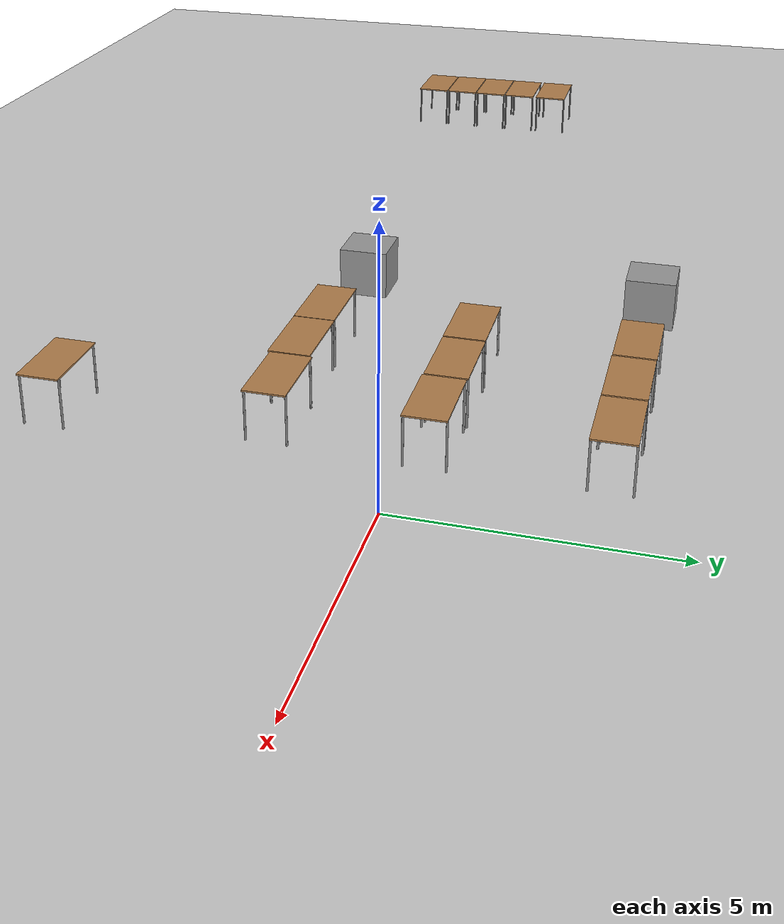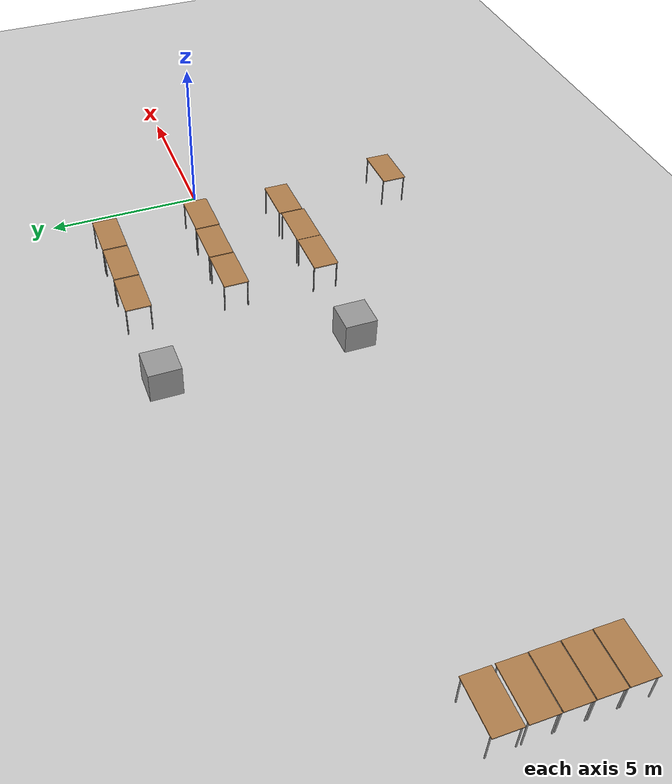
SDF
<sdf version="1.6">
 <world name="default">
  <model name="ground_plane">
   <static>1</static>
   <link name="link">
    <collision name="collision">
     <geometry><plane><normal>0 0 1</normal><size>100 100</size></plane></geometry>
     <surface><friction><ode><mu>100</mu><mu2>50</mu2></ode></friction></surface>
    </collision>
    <visual name="visual">
     <cast_shadows>0</cast_shadows>
     <geometry><plane><normal>0 0 1</normal><size>100 100</size></plane></geometry>
     <material>
      <script><uri>file://media/materials/scripts/gazebo.material</uri><name>Gazebo/Grey</name></script>
     </material>
    </visual>
   </link>
  </model>
  <model name="table">
   <static>1</static>
   <link name="link">
    <collision name="surface">
     <pose>0 0 1 0 -0 0</pose>
     <geometry><box><size>1.5 0.8 0.03</size></box></geometry>
     <surface><friction><ode><mu>0.6</mu><mu2>0.6</mu2></ode></friction></surface>
    </collision>
    <visual name="visual1">
     <pose>0 0 1 0 -0 0</pose>
     <geometry><box><size>1.5 0.8 0.03</size></box></geometry>
     <material>
      <script><uri>file://media/materials/scripts/gazebo.material</uri><name>Gazebo/Wood</name></script>
     </material>
    </visual>
    <collision name="front_left_leg">
     <pose>0.68 0.38 0.5 0 -0 0</pose>
     <geometry><cylinder><radius>0.02</radius><length>1</length></cylinder></geometry>
    </collision>
    <visual name="front_left_leg">
     <pose>0.68 0.38 0.5 0 -0 0</pose>
     <geometry><cylinder><radius>0.02</radius><length>1</length></cylinder></geometry>
     <material>
      <script><uri>file://media/materials/scripts/gazebo.material</uri><name>Gazebo/Grey</name></script>
     </material>
    </visual>
    <collision name="front_right_leg">
     <pose>0.68 -0.38 0.5 0 -0 0</pose>
     <geometry><cylinder><radius>0.02</radius><length>1</length></cylinder></geometry>
    </collision>
    <visual name="front_right_leg">
     <pose>0.68 -0.38 0.5 0 -0 0</pose>
     <geometry><cylinder><radius>0.02</radius><length>1</length></cylinder></geometry>
     <material>
      <script><uri>file://media/materials/scripts/gazebo.material</uri><name>Gazebo/Grey</name></script>
     </material>
    </visual>
    <collision name="back_right_leg">
     <pose>-0.68 -0.38 0.5 0 -0 0</pose>
     <geometry><cylinder><radius>0.02</radius><length>1</length></cylinder></geometry>
    </collision>
    <visual name="back_right_leg">
     <pose>-0.68 -0.38 0.5 0 -0 0</pose>
     <geometry><cylinder><radius>0.02</radius><length>1</length></cylinder></geometry>
     <material>
      <script><uri>file://media/materials/scripts/gazebo.material</uri><name>Gazebo/Grey</name></script>
     </material>
    </visual>
    <collision name="back_left_leg">
     <pose>-0.68 0.38 0.5 0 -0 0</pose>
     <geometry><cylinder><radius>0.02</radius><length>1</length></cylinder></geometry>
    </collision>
    <visual name="back_left_leg">
     <pose>-0.68 0.38 0.5 0 -0 0</pose>
     <geometry><cylinder><radius>0.02</radius><length>1</length></cylinder></geometry>
     <material>
      <script><uri>file://media/materials/scripts/gazebo.material</uri><name>Gazebo/Grey</name></script>
     </material>
    </visual>
   </link>
   <pose>-1.77581 -6.45658 0 0 -0 0</pose>
  </model>
  <model name="unit_box">
   <pose>-8.43298 3.46662 0.499995 -1e-05 -0 -0</pose>
   <link name="link">
    <inertial>
     <mass>1</mass>
     <inertia>
      <ixx>0.166667</ixx>
      <ixy>0</ixy>
      <ixz>0</ixz>
      <iyy>0.166667</iyy>
      <iyz>0</iyz>
      <izz>0.166667</izz>
     </inertia>
    </inertial>
    <collision name="collision"><geometry><box><size>1 1 1</size></box></geometry></collision>
    <visual name="visual">
     <geometry><box><size>1 1 1</size></box></geometry>
     <material>
      <script><name>Gazebo/Grey</name><uri>file://media/materials/scripts/gazebo.material</uri></script>
     </material>
    </visual>
   </link>
  </model>
  <model name="unit_box_0">
   <pose>-8.43126 -2.51767 0.499995 0 1e-05 0</pose>
   <link name="link">
    <inertial>
     <mass>1</mass>
     <inertia>
      <ixx>0.166667</ixx>
      <ixy>0</ixy>
      <ixz>0</ixz>
      <iyy>0.166667</iyy>
      <iyz>0</iyz>
      <izz>0.166667</izz>
     </inertia>
    </inertial>
    <collision name="collision"><geometry><box><size>1 1 1</size></box></geometry></collision>
    <visual name="visual">
     <geometry><box><size>1 1 1</size></box></geometry>
     <material>
      <script><name>Gazebo/Grey</name><uri>file://media/materials/scripts/gazebo.material</uri></script>
     </material>
    </visual>
   </link>
  </model>
  <model name="table_2">
   <static>1</static>
   <link name="link">
    <collision name="surface">
     <pose>0 0 1 0 -0 0</pose>
     <geometry><box><size>1.5 0.8 0.03</size></box></geometry>
     <surface><friction><ode><mu>0.6</mu><mu2>0.6</mu2></ode></friction></surface>
    </collision>
    <visual name="visual1">
     <pose>0 0 1 0 -0 0</pose>
     <geometry><box><size>1.5 0.8 0.03</size></box></geometry>
     <material>
      <script><uri>file://media/materials/scripts/gazebo.material</uri><name>Gazebo/Wood</name></script>
     </material>
    </visual>
    <collision name="front_left_leg">
     <pose>0.68 0.38 0.5 0 -0 0</pose>
     <geometry><cylinder><radius>0.02</radius><length>1</length></cylinder></geometry>
    </collision>
    <visual name="front_left_leg">
     <pose>0.68 0.38 0.5 0 -0 0</pose>
     <geometry><cylinder><radius>0.02</radius><length>1</length></cylinder></geometry>
     <material>
      <script><uri>file://media/materials/scripts/gazebo.material</uri><name>Gazebo/Grey</name></script>
     </material>
    </visual>
    <collision name="front_right_leg">
     <pose>0.68 -0.38 0.5 0 -0 0</pose>
     <geometry><cylinder><radius>0.02</radius><length>1</length></cylinder></geometry>
    </collision>
    <visual name="front_right_leg">
     <pose>0.68 -0.38 0.5 0 -0 0</pose>
     <geometry><cylinder><radius>0.02</radius><length>1</length></cylinder></geometry>
     <material>
      <script><uri>file://media/materials/scripts/gazebo.material</uri><name>Gazebo/Grey</name></script>
     </material>
    </visual>
    <collision name="back_right_leg">
     <pose>-0.68 -0.38 0.5 0 -0 0</pose>
     <geometry><cylinder><radius>0.02</radius><length>1</length></cylinder></geometry>
    </collision>
    <visual name="back_right_leg">
     <pose>-0.68 -0.38 0.5 0 -0 0</pose>
     <geometry><cylinder><radius>0.02</radius><length>1</length></cylinder></geometry>
     <material>
      <script><uri>file://media/materials/scripts/gazebo.material</uri><name>Gazebo/Grey</name></script>
     </material>
    </visual>
    <collision name="back_left_leg">
     <pose>-0.68 0.38 0.5 0 -0 0</pose>
     <geometry><cylinder><radius>0.02</radius><length>1</length></cylinder></geometry>
    </collision>
    <visual name="back_left_leg">
     <pose>-0.68 0.38 0.5 0 -0 0</pose>
     <geometry><cylinder><radius>0.02</radius><length>1</length></cylinder></geometry>
     <material>
      <script><uri>file://media/materials/scripts/gazebo.material</uri><name>Gazebo/Grey</name></script>
     </material>
    </visual>
   </link>
   <pose>-5.31157 3.49328 0 0 -0 0</pose>
  </model>
  <model name="table_3">
   <static>1</static>
   <link name="link">
    <collision name="surface">
     <pose>0 0 1 0 -0 0</pose>
     <geometry><box><size>1.5 0.8 0.03</size></box></geometry>
     <surface><friction><ode><mu>0.6</mu><mu2>0.6</mu2></ode></friction></surface>
    </collision>
    <visual name="visual1">
     <pose>0 0 1 0 -0 0</pose>
     <geometry><box><size>1.5 0.8 0.03</size></box></geometry>
     <material>
      <script><uri>file://media/materials/scripts/gazebo.material</uri><name>Gazebo/Wood</name></script>
     </material>
    </visual>
    <collision name="front_left_leg">
     <pose>0.68 0.38 0.5 0 -0 0</pose>
     <geometry><cylinder><radius>0.02</radius><length>1</length></cylinder></geometry>
    </collision>
    <visual name="front_left_leg">
     <pose>0.68 0.38 0.5 0 -0 0</pose>
     <geometry><cylinder><radius>0.02</radius><length>1</length></cylinder></geometry>
     <material>
      <script><uri>file://media/materials/scripts/gazebo.material</uri><name>Gazebo/Grey</name></script>
     </material>
    </visual>
    <collision name="front_right_leg">
     <pose>0.68 -0.38 0.5 0 -0 0</pose>
     <geometry><cylinder><radius>0.02</radius><length>1</length></cylinder></geometry>
    </collision>
    <visual name="front_right_leg">
     <pose>0.68 -0.38 0.5 0 -0 0</pose>
     <geometry><cylinder><radius>0.02</radius><length>1</length></cylinder></geometry>
     <material>
      <script><uri>file://media/materials/scripts/gazebo.material</uri><name>Gazebo/Grey</name></script>
     </material>
    </visual>
    <collision name="back_right_leg">
     <pose>-0.68 -0.38 0.5 0 -0 0</pose>
     <geometry><cylinder><radius>0.02</radius><length>1</length></cylinder></geometry>
    </collision>
    <visual name="back_right_leg">
     <pose>-0.68 -0.38 0.5 0 -0 0</pose>
     <geometry><cylinder><radius>0.02</radius><length>1</length></cylinder></geometry>
     <material>
      <script><uri>file://media/materials/scripts/gazebo.material</uri><name>Gazebo/Grey</name></script>
     </material>
    </visual>
    <collision name="back_left_leg">
     <pose>-0.68 0.38 0.5 0 -0 0</pose>
     <geometry><cylinder><radius>0.02</radius><length>1</length></cylinder></geometry>
    </collision>
    <visual name="back_left_leg">
     <pose>-0.68 0.38 0.5 0 -0 0</pose>
     <geometry><cylinder><radius>0.02</radius><length>1</length></cylinder></geometry>
     <material>
      <script><uri>file://media/materials/scripts/gazebo.material</uri><name>Gazebo/Grey</name></script>
     </material>
    </visual>
   </link>
   <pose>-3.76952 3.48462 0 0 -0 0</pose>
  </model>
  <model name="table_4">
   <static>1</static>
   <link name="link">
    <collision name="surface">
     <pose>0 0 1 0 -0 0</pose>
     <geometry><box><size>1.5 0.8 0.03</size></box></geometry>
     <surface><friction><ode><mu>0.6</mu><mu2>0.6</mu2></ode></friction></surface>
    </collision>
    <visual name="visual1">
     <pose>0 0 1 0 -0 0</pose>
     <geometry><box><size>1.5 0.8 0.03</size></box></geometry>
     <material>
      <script><uri>file://media/materials/scripts/gazebo.material</uri><name>Gazebo/Wood</name></script>
     </material>
    </visual>
    <collision name="front_left_leg">
     <pose>0.68 0.38 0.5 0 -0 0</pose>
     <geometry><cylinder><radius>0.02</radius><length>1</length></cylinder></geometry>
    </collision>
    <visual name="front_left_leg">
     <pose>0.68 0.38 0.5 0 -0 0</pose>
     <geometry><cylinder><radius>0.02</radius><length>1</length></cylinder></geometry>
     <material>
      <script><uri>file://media/materials/scripts/gazebo.material</uri><name>Gazebo/Grey</name></script>
     </material>
    </visual>
    <collision name="front_right_leg">
     <pose>0.68 -0.38 0.5 0 -0 0</pose>
     <geometry><cylinder><radius>0.02</radius><length>1</length></cylinder></geometry>
    </collision>
    <visual name="front_right_leg">
     <pose>0.68 -0.38 0.5 0 -0 0</pose>
     <geometry><cylinder><radius>0.02</radius><length>1</length></cylinder></geometry>
     <material>
      <script><uri>file://media/materials/scripts/gazebo.material</uri><name>Gazebo/Grey</name></script>
     </material>
    </visual>
    <collision name="back_right_leg">
     <pose>-0.68 -0.38 0.5 0 -0 0</pose>
     <geometry><cylinder><radius>0.02</radius><length>1</length></cylinder></geometry>
    </collision>
    <visual name="back_right_leg">
     <pose>-0.68 -0.38 0.5 0 -0 0</pose>
     <geometry><cylinder><radius>0.02</radius><length>1</length></cylinder></geometry>
     <material>
      <script><uri>file://media/materials/scripts/gazebo.material</uri><name>Gazebo/Grey</name></script>
     </material>
    </visual>
    <collision name="back_left_leg">
     <pose>-0.68 0.38 0.5 0 -0 0</pose>
     <geometry><cylinder><radius>0.02</radius><length>1</length></cylinder></geometry>
    </collision>
    <visual name="back_left_leg">
     <pose>-0.68 0.38 0.5 0 -0 0</pose>
     <geometry><cylinder><radius>0.02</radius><length>1</length></cylinder></geometry>
     <material>
      <script><uri>file://media/materials/scripts/gazebo.material</uri><name>Gazebo/Grey</name></script>
     </material>
    </visual>
   </link>
   <pose>-2.2286 3.48108 0 0 -0 0</pose>
  </model>
  <model name="table_9">
   <static>1</static>
   <link name="link">
    <collision name="surface">
     <pose>0 0 1 0 -0 0</pose>
     <geometry><box><size>1.5 0.8 0.03</size></box></geometry>
     <surface><friction><ode><mu>0.6</mu><mu2>0.6</mu2></ode></friction></surface>
    </collision>
    <visual name="visual1">
     <pose>0 0 1 0 -0 0</pose>
     <geometry><box><size>1.5 0.8 0.03</size></box></geometry>
     <material>
      <script><uri>file://media/materials/scripts/gazebo.material</uri><name>Gazebo/Wood</name></script>
     </material>
    </visual>
    <collision name="front_left_leg">
     <pose>0.68 0.38 0.5 0 -0 0</pose>
     <geometry><cylinder><radius>0.02</radius><length>1</length></cylinder></geometry>
    </collision>
    <visual name="front_left_leg">
     <pose>0.68 0.38 0.5 0 -0 0</pose>
     <geometry><cylinder><radius>0.02</radius><length>1</length></cylinder></geometry>
     <material>
      <script><uri>file://media/materials/scripts/gazebo.material</uri><name>Gazebo/Grey</name></script>
     </material>
    </visual>
    <collision name="front_right_leg">
     <pose>0.68 -0.38 0.5 0 -0 0</pose>
     <geometry><cylinder><radius>0.02</radius><length>1</length></cylinder></geometry>
    </collision>
    <visual name="front_right_leg">
     <pose>0.68 -0.38 0.5 0 -0 0</pose>
     <geometry><cylinder><radius>0.02</radius><length>1</length></cylinder></geometry>
     <material>
      <script><uri>file://media/materials/scripts/gazebo.material</uri><name>Gazebo/Grey</name></script>
     </material>
    </visual>
    <collision name="back_right_leg">
     <pose>-0.68 -0.38 0.5 0 -0 0</pose>
     <geometry><cylinder><radius>0.02</radius><length>1</length></cylinder></geometry>
    </collision>
    <visual name="back_right_leg">
     <pose>-0.68 -0.38 0.5 0 -0 0</pose>
     <geometry><cylinder><radius>0.02</radius><length>1</length></cylinder></geometry>
     <material>
      <script><uri>file://media/materials/scripts/gazebo.material</uri><name>Gazebo/Grey</name></script>
     </material>
    </visual>
    <collision name="back_left_leg">
     <pose>-0.68 0.38 0.5 0 -0 0</pose>
     <geometry><cylinder><radius>0.02</radius><length>1</length></cylinder></geometry>
    </collision>
    <visual name="back_left_leg">
     <pose>-0.68 0.38 0.5 0 -0 0</pose>
     <geometry><cylinder><radius>0.02</radius><length>1</length></cylinder></geometry>
     <material>
      <script><uri>file://media/materials/scripts/gazebo.material</uri><name>Gazebo/Grey</name></script>
     </material>
    </visual>
   </link>
   <pose>-5.23967 0.394709 0 0 -0 0</pose>
  </model>
  <model name="table_10">
   <static>1</static>
   <link name="link">
    <collision name="surface">
     <pose>0 0 1 0 -0 0</pose>
     <geometry><box><size>1.5 0.8 0.03</size></box></geometry>
     <surface><friction><ode><mu>0.6</mu><mu2>0.6</mu2></ode></friction></surface>
    </collision>
    <visual name="visual1">
     <pose>0 0 1 0 -0 0</pose>
     <geometry><box><size>1.5 0.8 0.03</size></box></geometry>
     <material>
      <script><uri>file://media/materials/scripts/gazebo.material</uri><name>Gazebo/Wood</name></script>
     </material>
    </visual>
    <collision name="front_left_leg">
     <pose>0.68 0.38 0.5 0 -0 0</pose>
     <geometry><cylinder><radius>0.02</radius><length>1</length></cylinder></geometry>
    </collision>
    <visual name="front_left_leg">
     <pose>0.68 0.38 0.5 0 -0 0</pose>
     <geometry><cylinder><radius>0.02</radius><length>1</length></cylinder></geometry>
     <material>
      <script><uri>file://media/materials/scripts/gazebo.material</uri><name>Gazebo/Grey</name></script>
     </material>
    </visual>
    <collision name="front_right_leg">
     <pose>0.68 -0.38 0.5 0 -0 0</pose>
     <geometry><cylinder><radius>0.02</radius><length>1</length></cylinder></geometry>
    </collision>
    <visual name="front_right_leg">
     <pose>0.68 -0.38 0.5 0 -0 0</pose>
     <geometry><cylinder><radius>0.02</radius><length>1</length></cylinder></geometry>
     <material>
      <script><uri>file://media/materials/scripts/gazebo.material</uri><name>Gazebo/Grey</name></script>
     </material>
    </visual>
    <collision name="back_right_leg">
     <pose>-0.68 -0.38 0.5 0 -0 0</pose>
     <geometry><cylinder><radius>0.02</radius><length>1</length></cylinder></geometry>
    </collision>
    <visual name="back_right_leg">
     <pose>-0.68 -0.38 0.5 0 -0 0</pose>
     <geometry><cylinder><radius>0.02</radius><length>1</length></cylinder></geometry>
     <material>
      <script><uri>file://media/materials/scripts/gazebo.material</uri><name>Gazebo/Grey</name></script>
     </material>
    </visual>
    <collision name="back_left_leg">
     <pose>-0.68 0.38 0.5 0 -0 0</pose>
     <geometry><cylinder><radius>0.02</radius><length>1</length></cylinder></geometry>
    </collision>
    <visual name="back_left_leg">
     <pose>-0.68 0.38 0.5 0 -0 0</pose>
     <geometry><cylinder><radius>0.02</radius><length>1</length></cylinder></geometry>
     <material>
      <script><uri>file://media/materials/scripts/gazebo.material</uri><name>Gazebo/Grey</name></script>
     </material>
    </visual>
   </link>
   <pose>-3.70363 0.399866 0 0 -0 0</pose>
  </model>
  <model name="table_11">
   <static>1</static>
   <link name="link">
    <collision name="surface">
     <pose>0 0 1 0 -0 0</pose>
     <geometry><box><size>1.5 0.8 0.03</size></box></geometry>
     <surface><friction><ode><mu>0.6</mu><mu2>0.6</mu2></ode></friction></surface>
    </collision>
    <visual name="visual1">
     <pose>0 0 1 0 -0 0</pose>
     <geometry><box><size>1.5 0.8 0.03</size></box></geometry>
     <material>
      <script><uri>file://media/materials/scripts/gazebo.material</uri><name>Gazebo/Wood</name></script>
     </material>
    </visual>
    <collision name="front_left_leg">
     <pose>0.68 0.38 0.5 0 -0 0</pose>
     <geometry><cylinder><radius>0.02</radius><length>1</length></cylinder></geometry>
    </collision>
    <visual name="front_left_leg">
     <pose>0.68 0.38 0.5 0 -0 0</pose>
     <geometry><cylinder><radius>0.02</radius><length>1</length></cylinder></geometry>
     <material>
      <script><uri>file://media/materials/scripts/gazebo.material</uri><name>Gazebo/Grey</name></script>
     </material>
    </visual>
    <collision name="front_right_leg">
     <pose>0.68 -0.38 0.5 0 -0 0</pose>
     <geometry><cylinder><radius>0.02</radius><length>1</length></cylinder></geometry>
    </collision>
    <visual name="front_right_leg">
     <pose>0.68 -0.38 0.5 0 -0 0</pose>
     <geometry><cylinder><radius>0.02</radius><length>1</length></cylinder></geometry>
     <material>
      <script><uri>file://media/materials/scripts/gazebo.material</uri><name>Gazebo/Grey</name></script>
     </material>
    </visual>
    <collision name="back_right_leg">
     <pose>-0.68 -0.38 0.5 0 -0 0</pose>
     <geometry><cylinder><radius>0.02</radius><length>1</length></cylinder></geometry>
    </collision>
    <visual name="back_right_leg">
     <pose>-0.68 -0.38 0.5 0 -0 0</pose>
     <geometry><cylinder><radius>0.02</radius><length>1</length></cylinder></geometry>
     <material>
      <script><uri>file://media/materials/scripts/gazebo.material</uri><name>Gazebo/Grey</name></script>
     </material>
    </visual>
    <collision name="back_left_leg">
     <pose>-0.68 0.38 0.5 0 -0 0</pose>
     <geometry><cylinder><radius>0.02</radius><length>1</length></cylinder></geometry>
    </collision>
    <visual name="back_left_leg">
     <pose>-0.68 0.38 0.5 0 -0 0</pose>
     <geometry><cylinder><radius>0.02</radius><length>1</length></cylinder></geometry>
     <material>
      <script><uri>file://media/materials/scripts/gazebo.material</uri><name>Gazebo/Grey</name></script>
     </material>
    </visual>
   </link>
   <pose>-2.16724 0.377788 0 0 -0 0</pose>
  </model>
  <model name="table_14">
   <static>1</static>
   <link name="link">
    <collision name="surface">
     <pose>0 0 1 0 -0 0</pose>
     <geometry><box><size>1.5 0.8 0.03</size></box></geometry>
     <surface><friction><ode><mu>0.6</mu><mu2>0.6</mu2></ode></friction></surface>
    </collision>
    <visual name="visual1">
     <pose>0 0 1 0 -0 0</pose>
     <geometry><box><size>1.5 0.8 0.03</size></box></geometry>
     <material>
      <script><uri>file://media/materials/scripts/gazebo.material</uri><name>Gazebo/Wood</name></script>
     </material>
    </visual>
    <collision name="front_left_leg">
     <pose>0.68 0.38 0.5 0 -0 0</pose>
     <geometry><cylinder><radius>0.02</radius><length>1</length></cylinder></geometry>
    </collision>
    <visual name="front_left_leg">
     <pose>0.68 0.38 0.5 0 -0 0</pose>
     <geometry><cylinder><radius>0.02</radius><length>1</length></cylinder></geometry>
     <material>
      <script><uri>file://media/materials/scripts/gazebo.material</uri><name>Gazebo/Grey</name></script>
     </material>
    </visual>
    <collision name="front_right_leg">
     <pose>0.68 -0.38 0.5 0 -0 0</pose>
     <geometry><cylinder><radius>0.02</radius><length>1</length></cylinder></geometry>
    </collision>
    <visual name="front_right_leg">
     <pose>0.68 -0.38 0.5 0 -0 0</pose>
     <geometry><cylinder><radius>0.02</radius><length>1</length></cylinder></geometry>
     <material>
      <script><uri>file://media/materials/scripts/gazebo.material</uri><name>Gazebo/Grey</name></script>
     </material>
    </visual>
    <collision name="back_right_leg">
     <pose>-0.68 -0.38 0.5 0 -0 0</pose>
     <geometry><cylinder><radius>0.02</radius><length>1</length></cylinder></geometry>
    </collision>
    <visual name="back_right_leg">
     <pose>-0.68 -0.38 0.5 0 -0 0</pose>
     <geometry><cylinder><radius>0.02</radius><length>1</length></cylinder></geometry>
     <material>
      <script><uri>file://media/materials/scripts/gazebo.material</uri><name>Gazebo/Grey</name></script>
     </material>
    </visual>
    <collision name="back_left_leg">
     <pose>-0.68 0.38 0.5 0 -0 0</pose>
     <geometry><cylinder><radius>0.02</radius><length>1</length></cylinder></geometry>
    </collision>
    <visual name="back_left_leg">
     <pose>-0.68 0.38 0.5 0 -0 0</pose>
     <geometry><cylinder><radius>0.02</radius><length>1</length></cylinder></geometry>
     <material>
      <script><uri>file://media/materials/scripts/gazebo.material</uri><name>Gazebo/Grey</name></script>
     </material>
    </visual>
   </link>
   <pose>-5.32468 -2.52711 0 0 -0 0</pose>
  </model>
  <model name="table_15">
   <static>1</static>
   <link name="link">
    <collision name="surface">
     <pose>0 0 1 0 -0 0</pose>
     <geometry><box><size>1.5 0.8 0.03</size></box></geometry>
     <surface><friction><ode><mu>0.6</mu><mu2>0.6</mu2></ode></friction></surface>
    </collision>
    <visual name="visual1">
     <pose>0 0 1 0 -0 0</pose>
     <geometry><box><size>1.5 0.8 0.03</size></box></geometry>
     <material>
      <script><uri>file://media/materials/scripts/gazebo.material</uri><name>Gazebo/Wood</name></script>
     </material>
    </visual>
    <collision name="front_left_leg">
     <pose>0.68 0.38 0.5 0 -0 0</pose>
     <geometry><cylinder><radius>0.02</radius><length>1</length></cylinder></geometry>
    </collision>
    <visual name="front_left_leg">
     <pose>0.68 0.38 0.5 0 -0 0</pose>
     <geometry><cylinder><radius>0.02</radius><length>1</length></cylinder></geometry>
     <material>
      <script><uri>file://media/materials/scripts/gazebo.material</uri><name>Gazebo/Grey</name></script>
     </material>
    </visual>
    <collision name="front_right_leg">
     <pose>0.68 -0.38 0.5 0 -0 0</pose>
     <geometry><cylinder><radius>0.02</radius><length>1</length></cylinder></geometry>
    </collision>
    <visual name="front_right_leg">
     <pose>0.68 -0.38 0.5 0 -0 0</pose>
     <geometry><cylinder><radius>0.02</radius><length>1</length></cylinder></geometry>
     <material>
      <script><uri>file://media/materials/scripts/gazebo.material</uri><name>Gazebo/Grey</name></script>
     </material>
    </visual>
    <collision name="back_right_leg">
     <pose>-0.68 -0.38 0.5 0 -0 0</pose>
     <geometry><cylinder><radius>0.02</radius><length>1</length></cylinder></geometry>
    </collision>
    <visual name="back_right_leg">
     <pose>-0.68 -0.38 0.5 0 -0 0</pose>
     <geometry><cylinder><radius>0.02</radius><length>1</length></cylinder></geometry>
     <material>
      <script><uri>file://media/materials/scripts/gazebo.material</uri><name>Gazebo/Grey</name></script>
     </material>
    </visual>
    <collision name="back_left_leg">
     <pose>-0.68 0.38 0.5 0 -0 0</pose>
     <geometry><cylinder><radius>0.02</radius><length>1</length></cylinder></geometry>
    </collision>
    <visual name="back_left_leg">
     <pose>-0.68 0.38 0.5 0 -0 0</pose>
     <geometry><cylinder><radius>0.02</radius><length>1</length></cylinder></geometry>
     <material>
      <script><uri>file://media/materials/scripts/gazebo.material</uri><name>Gazebo/Grey</name></script>
     </material>
    </visual>
   </link>
   <pose>-3.80987 -2.52228 0 0 -0 0</pose>
  </model>
  <model name="table_16">
   <static>1</static>
   <link name="link">
    <collision name="surface">
     <pose>0 0 1 0 -0 0</pose>
     <geometry><box><size>1.5 0.8 0.03</size></box></geometry>
     <surface><friction><ode><mu>0.6</mu><mu2>0.6</mu2></ode></friction></surface>
    </collision>
    <visual name="visual1">
     <pose>0 0 1 0 -0 0</pose>
     <geometry><box><size>1.5 0.8 0.03</size></box></geometry>
     <material>
      <script><uri>file://media/materials/scripts/gazebo.material</uri><name>Gazebo/Wood</name></script>
     </material>
    </visual>
    <collision name="front_left_leg">
     <pose>0.68 0.38 0.5 0 -0 0</pose>
     <geometry><cylinder><radius>0.02</radius><length>1</length></cylinder></geometry>
    </collision>
    <visual name="front_left_leg">
     <pose>0.68 0.38 0.5 0 -0 0</pose>
     <geometry><cylinder><radius>0.02</radius><length>1</length></cylinder></geometry>
     <material>
      <script><uri>file://media/materials/scripts/gazebo.material</uri><name>Gazebo/Grey</name></script>
     </material>
    </visual>
    <collision name="front_right_leg">
     <pose>0.68 -0.38 0.5 0 -0 0</pose>
     <geometry><cylinder><radius>0.02</radius><length>1</length></cylinder></geometry>
    </collision>
    <visual name="front_right_leg">
     <pose>0.68 -0.38 0.5 0 -0 0</pose>
     <geometry><cylinder><radius>0.02</radius><length>1</length></cylinder></geometry>
     <material>
      <script><uri>file://media/materials/scripts/gazebo.material</uri><name>Gazebo/Grey</name></script>
     </material>
    </visual>
    <collision name="back_right_leg">
     <pose>-0.68 -0.38 0.5 0 -0 0</pose>
     <geometry><cylinder><radius>0.02</radius><length>1</length></cylinder></geometry>
    </collision>
    <visual name="back_right_leg">
     <pose>-0.68 -0.38 0.5 0 -0 0</pose>
     <geometry><cylinder><radius>0.02</radius><length>1</length></cylinder></geometry>
     <material>
      <script><uri>file://media/materials/scripts/gazebo.material</uri><name>Gazebo/Grey</name></script>
     </material>
    </visual>
    <collision name="back_left_leg">
     <pose>-0.68 0.38 0.5 0 -0 0</pose>
     <geometry><cylinder><radius>0.02</radius><length>1</length></cylinder></geometry>
    </collision>
    <visual name="back_left_leg">
     <pose>-0.68 0.38 0.5 0 -0 0</pose>
     <geometry><cylinder><radius>0.02</radius><length>1</length></cylinder></geometry>
     <material>
      <script><uri>file://media/materials/scripts/gazebo.material</uri><name>Gazebo/Grey</name></script>
     </material>
    </visual>
   </link>
   <pose>-2.27795 -2.46752 0 0 -0 0</pose>
  </model>
  <model name="table_20">
   <static>1</static>
   <link name="link">
    <collision name="surface">
     <pose>0 0 1 0 -0 0</pose>
     <geometry><box><size>1.5 0.8 0.03</size></box></geometry>
     <surface><friction><ode><mu>0.6</mu><mu2>0.6</mu2></ode></friction></surface>
    </collision>
    <visual name="visual1">
     <pose>0 0 1 0 -0 0</pose>
     <geometry><box><size>1.5 0.8 0.03</size></box></geometry>
     <material>
      <script><uri>file://media/materials/scripts/gazebo.material</uri><name>Gazebo/Wood</name></script>
     </material>
    </visual>
    <collision name="front_left_leg">
     <pose>0.68 0.38 0.5 0 -0 0</pose>
     <geometry><cylinder><radius>0.02</radius><length>1</length></cylinder></geometry>
    </collision>
    <visual name="front_left_leg">
     <pose>0.68 0.38 0.5 0 -0 0</pose>
     <geometry><cylinder><radius>0.02</radius><length>1</length></cylinder></geometry>
     <material>
      <script><uri>file://media/materials/scripts/gazebo.material</uri><name>Gazebo/Grey</name></script>
     </material>
    </visual>
    <collision name="front_right_leg">
     <pose>0.68 -0.38 0.5 0 -0 0</pose>
     <geometry><cylinder><radius>0.02</radius><length>1</length></cylinder></geometry>
    </collision>
    <visual name="front_right_leg">
     <pose>0.68 -0.38 0.5 0 -0 0</pose>
     <geometry><cylinder><radius>0.02</radius><length>1</length></cylinder></geometry>
     <material>
      <script><uri>file://media/materials/scripts/gazebo.material</uri><name>Gazebo/Grey</name></script>
     </material>
    </visual>
    <collision name="back_right_leg">
     <pose>-0.68 -0.38 0.5 0 -0 0</pose>
     <geometry><cylinder><radius>0.02</radius><length>1</length></cylinder></geometry>
    </collision>
    <visual name="back_right_leg">
     <pose>-0.68 -0.38 0.5 0 -0 0</pose>
     <geometry><cylinder><radius>0.02</radius><length>1</length></cylinder></geometry>
     <material>
      <script><uri>file://media/materials/scripts/gazebo.material</uri><name>Gazebo/Grey</name></script>
     </material>
    </visual>
    <collision name="back_left_leg">
     <pose>-0.68 0.38 0.5 0 -0 0</pose>
     <geometry><cylinder><radius>0.02</radius><length>1</length></cylinder></geometry>
    </collision>
    <visual name="back_left_leg">
     <pose>-0.68 0.38 0.5 0 -0 0</pose>
     <geometry><cylinder><radius>0.02</radius><length>1</length></cylinder></geometry>
     <material>
      <script><uri>file://media/materials/scripts/gazebo.material</uri><name>Gazebo/Grey</name></script>
     </material>
    </visual>
   </link>
   <pose>-20.7569 -0.463939 0 0 -0 0</pose>
  </model>
  <model name="table_21">
   <static>1</static>
   <link name="link">
    <collision name="surface">
     <pose>0 0 1 0 -0 0</pose>
     <geometry><box><size>1.5 0.8 0.03</size></box></geometry>
     <surface><friction><ode><mu>0.6</mu><mu2>0.6</mu2></ode></friction></surface>
    </collision>
    <visual name="visual1">
     <pose>0 0 1 0 -0 0</pose>
     <geometry><box><size>1.5 0.8 0.03</size></box></geometry>
     <material>
      <script><uri>file://media/materials/scripts/gazebo.material</uri><name>Gazebo/Wood</name></script>
     </material>
    </visual>
    <collision name="front_left_leg">
     <pose>0.68 0.38 0.5 0 -0 0</pose>
     <geometry><cylinder><radius>0.02</radius><length>1</length></cylinder></geometry>
    </collision>
    <visual name="front_left_leg">
     <pose>0.68 0.38 0.5 0 -0 0</pose>
     <geometry><cylinder><radius>0.02</radius><length>1</length></cylinder></geometry>
     <material>
      <script><uri>file://media/materials/scripts/gazebo.material</uri><name>Gazebo/Grey</name></script>
     </material>
    </visual>
    <collision name="front_right_leg">
     <pose>0.68 -0.38 0.5 0 -0 0</pose>
     <geometry><cylinder><radius>0.02</radius><length>1</length></cylinder></geometry>
    </collision>
    <visual name="front_right_leg">
     <pose>0.68 -0.38 0.5 0 -0 0</pose>
     <geometry><cylinder><radius>0.02</radius><length>1</length></cylinder></geometry>
     <material>
      <script><uri>file://media/materials/scripts/gazebo.material</uri><name>Gazebo/Grey</name></script>
     </material>
    </visual>
    <collision name="back_right_leg">
     <pose>-0.68 -0.38 0.5 0 -0 0</pose>
     <geometry><cylinder><radius>0.02</radius><length>1</length></cylinder></geometry>
    </collision>
    <visual name="back_right_leg">
     <pose>-0.68 -0.38 0.5 0 -0 0</pose>
     <geometry><cylinder><radius>0.02</radius><length>1</length></cylinder></geometry>
     <material>
      <script><uri>file://media/materials/scripts/gazebo.material</uri><name>Gazebo/Grey</name></script>
     </material>
    </visual>
    <collision name="back_left_leg">
     <pose>-0.68 0.38 0.5 0 -0 0</pose>
     <geometry><cylinder><radius>0.02</radius><length>1</length></cylinder></geometry>
    </collision>
    <visual name="back_left_leg">
     <pose>-0.68 0.38 0.5 0 -0 0</pose>
     <geometry><cylinder><radius>0.02</radius><length>1</length></cylinder></geometry>
     <material>
      <script><uri>file://media/materials/scripts/gazebo.material</uri><name>Gazebo/Grey</name></script>
     </material>
    </visual>
   </link>
   <pose>-20.7493 -1.34779 0 0 -0 0</pose>
  </model>
  <model name="table_22">
   <static>1</static>
   <link name="link">
    <collision name="surface">
     <pose>0 0 1 0 -0 0</pose>
     <geometry><box><size>1.5 0.8 0.03</size></box></geometry>
     <surface><friction><ode><mu>0.6</mu><mu2>0.6</mu2></ode></friction></surface>
    </collision>
    <visual name="visual1">
     <pose>0 0 1 0 -0 0</pose>
     <geometry><box><size>1.5 0.8 0.03</size></box></geometry>
     <material>
      <script><uri>file://media/materials/scripts/gazebo.material</uri><name>Gazebo/Wood</name></script>
     </material>
    </visual>
    <collision name="front_left_leg">
     <pose>0.68 0.38 0.5 0 -0 0</pose>
     <geometry><cylinder><radius>0.02</radius><length>1</length></cylinder></geometry>
    </collision>
    <visual name="front_left_leg">
     <pose>0.68 0.38 0.5 0 -0 0</pose>
     <geometry><cylinder><radius>0.02</radius><length>1</length></cylinder></geometry>
     <material>
      <script><uri>file://media/materials/scripts/gazebo.material</uri><name>Gazebo/Grey</name></script>
     </material>
    </visual>
    <collision name="front_right_leg">
     <pose>0.68 -0.38 0.5 0 -0 0</pose>
     <geometry><cylinder><radius>0.02</radius><length>1</length></cylinder></geometry>
    </collision>
    <visual name="front_right_leg">
     <pose>0.68 -0.38 0.5 0 -0 0</pose>
     <geometry><cylinder><radius>0.02</radius><length>1</length></cylinder></geometry>
     <material>
      <script><uri>file://media/materials/scripts/gazebo.material</uri><name>Gazebo/Grey</name></script>
     </material>
    </visual>
    <collision name="back_right_leg">
     <pose>-0.68 -0.38 0.5 0 -0 0</pose>
     <geometry><cylinder><radius>0.02</radius><length>1</length></cylinder></geometry>
    </collision>
    <visual name="back_right_leg">
     <pose>-0.68 -0.38 0.5 0 -0 0</pose>
     <geometry><cylinder><radius>0.02</radius><length>1</length></cylinder></geometry>
     <material>
      <script><uri>file://media/materials/scripts/gazebo.material</uri><name>Gazebo/Grey</name></script>
     </material>
    </visual>
    <collision name="back_left_leg">
     <pose>-0.68 0.38 0.5 0 -0 0</pose>
     <geometry><cylinder><radius>0.02</radius><length>1</length></cylinder></geometry>
    </collision>
    <visual name="back_left_leg">
     <pose>-0.68 0.38 0.5 0 -0 0</pose>
     <geometry><cylinder><radius>0.02</radius><length>1</length></cylinder></geometry>
     <material>
      <script><uri>file://media/materials/scripts/gazebo.material</uri><name>Gazebo/Grey</name></script>
     </material>
    </visual>
   </link>
   <pose>-20.7417 -2.1727 0 0 -0 0</pose>
  </model>
  <model name="table_23">
   <static>1</static>
   <link name="link">
    <collision name="surface">
     <pose>0 0 1 0 -0 0</pose>
     <geometry><box><size>1.5 0.8 0.03</size></box></geometry>
     <surface><friction><ode><mu>0.6</mu><mu2>0.6</mu2></ode></friction></surface>
    </collision>
    <visual name="visual1">
     <pose>0 0 1 0 -0 0</pose>
     <geometry><box><size>1.5 0.8 0.03</size></box></geometry>
     <material>
      <script><uri>file://media/materials/scripts/gazebo.material</uri><name>Gazebo/Wood</name></script>
     </material>
    </visual>
    <collision name="front_left_leg">
     <pose>0.68 0.38 0.5 0 -0 0</pose>
     <geometry><cylinder><radius>0.02</radius><length>1</length></cylinder></geometry>
    </collision>
    <visual name="front_left_leg">
     <pose>0.68 0.38 0.5 0 -0 0</pose>
     <geometry><cylinder><radius>0.02</radius><length>1</length></cylinder></geometry>
     <material>
      <script><uri>file://media/materials/scripts/gazebo.material</uri><name>Gazebo/Grey</name></script>
     </material>
    </visual>
    <collision name="front_right_leg">
     <pose>0.68 -0.38 0.5 0 -0 0</pose>
     <geometry><cylinder><radius>0.02</radius><length>1</length></cylinder></geometry>
    </collision>
    <visual name="front_right_leg">
     <pose>0.68 -0.38 0.5 0 -0 0</pose>
     <geometry><cylinder><radius>0.02</radius><length>1</length></cylinder></geometry>
     <material>
      <script><uri>file://media/materials/scripts/gazebo.material</uri><name>Gazebo/Grey</name></script>
     </material>
    </visual>
    <collision name="back_right_leg">
     <pose>-0.68 -0.38 0.5 0 -0 0</pose>
     <geometry><cylinder><radius>0.02</radius><length>1</length></cylinder></geometry>
    </collision>
    <visual name="back_right_leg">
     <pose>-0.68 -0.38 0.5 0 -0 0</pose>
     <geometry><cylinder><radius>0.02</radius><length>1</length></cylinder></geometry>
     <material>
      <script><uri>file://media/materials/scripts/gazebo.material</uri><name>Gazebo/Grey</name></script>
     </material>
    </visual>
    <collision name="back_left_leg">
     <pose>-0.68 0.38 0.5 0 -0 0</pose>
     <geometry><cylinder><radius>0.02</radius><length>1</length></cylinder></geometry>
    </collision>
    <visual name="back_left_leg">
     <pose>-0.68 0.38 0.5 0 -0 0</pose>
     <geometry><cylinder><radius>0.02</radius><length>1</length></cylinder></geometry>
     <material>
      <script><uri>file://media/materials/scripts/gazebo.material</uri><name>Gazebo/Grey</name></script>
     </material>
    </visual>
   </link>
   <pose>-20.735 -2.99774 0 0 -0 0</pose>
  </model>
  <model name="table_24">
   <static>1</static>
   <link name="link">
    <collision name="surface">
     <pose>0 0 1 0 -0 0</pose>
     <geometry><box><size>1.5 0.8 0.03</size></box></geometry>
     <surface><friction><ode><mu>0.6</mu><mu2>0.6</mu2></ode></friction></surface>
    </collision>
    <visual name="visual1">
     <pose>0 0 1 0 -0 0</pose>
     <geometry><box><size>1.5 0.8 0.03</size></box></geometry>
     <material>
      <script><uri>file://media/materials/scripts/gazebo.material</uri><name>Gazebo/Wood</name></script>
     </material>
    </visual>
    <collision name="front_left_leg">
     <pose>0.68 0.38 0.5 0 -0 0</pose>
     <geometry><cylinder><radius>0.02</radius><length>1</length></cylinder></geometry>
    </collision>
    <visual name="front_left_leg">
     <pose>0.68 0.38 0.5 0 -0 0</pose>
     <geometry><cylinder><radius>0.02</radius><length>1</length></cylinder></geometry>
     <material>
      <script><uri>file://media/materials/scripts/gazebo.material</uri><name>Gazebo/Grey</name></script>
     </material>
    </visual>
    <collision name="front_right_leg">
     <pose>0.68 -0.38 0.5 0 -0 0</pose>
     <geometry><cylinder><radius>0.02</radius><length>1</length></cylinder></geometry>
    </collision>
    <visual name="front_right_leg">
     <pose>0.68 -0.38 0.5 0 -0 0</pose>
     <geometry><cylinder><radius>0.02</radius><length>1</length></cylinder></geometry>
     <material>
      <script><uri>file://media/materials/scripts/gazebo.material</uri><name>Gazebo/Grey</name></script>
     </material>
    </visual>
    <collision name="back_right_leg">
     <pose>-0.68 -0.38 0.5 0 -0 0</pose>
     <geometry><cylinder><radius>0.02</radius><length>1</length></cylinder></geometry>
    </collision>
    <visual name="back_right_leg">
     <pose>-0.68 -0.38 0.5 0 -0 0</pose>
     <geometry><cylinder><radius>0.02</radius><length>1</length></cylinder></geometry>
     <material>
      <script><uri>file://media/materials/scripts/gazebo.material</uri><name>Gazebo/Grey</name></script>
     </material>
    </visual>
    <collision name="back_left_leg">
     <pose>-0.68 0.38 0.5 0 -0 0</pose>
     <geometry><cylinder><radius>0.02</radius><length>1</length></cylinder></geometry>
    </collision>
    <visual name="back_left_leg">
     <pose>-0.68 0.38 0.5 0 -0 0</pose>
     <geometry><cylinder><radius>0.02</radius><length>1</length></cylinder></geometry>
     <material>
      <script><uri>file://media/materials/scripts/gazebo.material</uri><name>Gazebo/Grey</name></script>
     </material>
    </visual>
   </link>
   <pose>-20.7266 -3.8229 0 0 -0 0</pose>
  </model>
 </world>
</sdf>
